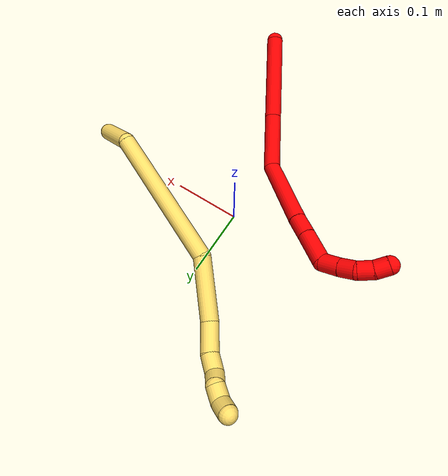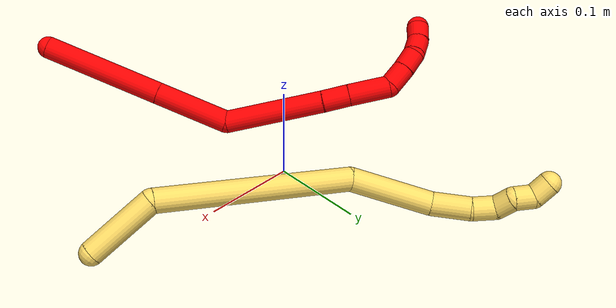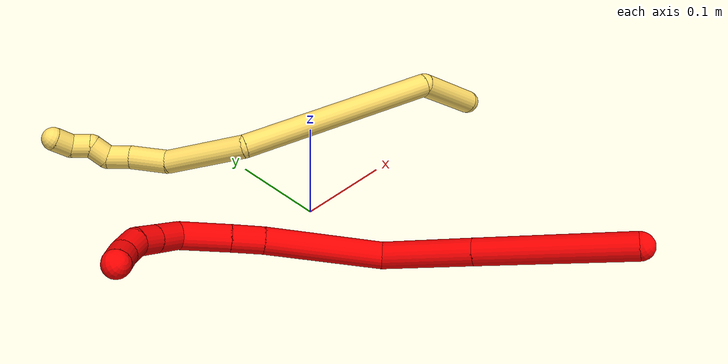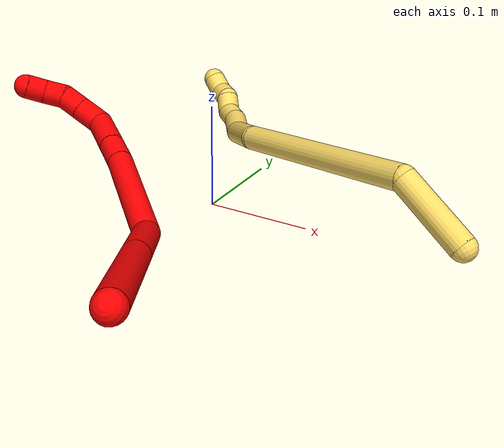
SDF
<sdf version="1.7">
 <world name="default">
  <model name="2">
   <static>0</static>
   <link name="2">
    <collision name="collision-cylinder-e_1_1_4">
     <pose>-0.029163 0.0073 0.061595 -0.117961 -0.439498 0.026376</pose>
     <geometry><cylinder><radius>0.0125</radius><length>0.137079</length></cylinder></geometry>
     <surface>
      <friction><ode><mu>1.16</mu><mu2>1.16</mu2><slip1>0</slip1><slip2>0</slip2></ode></friction>
      <contact><ode><kp>1e+06</kp><kd>1</kd><max_vel>0</max_vel><min_depth>0.001</min_depth></ode></contact>
     </surface>
    </collision>
    <visual name="visual-cylinder-e_1_1_4">
     <pose>-0.029163 0.0073 0.061595 -0.117961 -0.439498 0.026376</pose>
     <geometry><cylinder><radius>0.0125</radius><length>0.137079</length></cylinder></geometry>
     <material><ambient>1 0 0 1</ambient></material>
    </visual>
    <collision name="collision-cylinder-e_2_4_5">
     <pose>-0.076225 0.019237 0.161136 -0.121609 -0.43791 0.027092</pose>
     <geometry><cylinder><radius>0.0125</radius><length>0.084423</length></cylinder></geometry>
     <surface>
      <friction><ode><mu>1.16</mu><mu2>1.16</mu2><slip1>0</slip1><slip2>0</slip2></ode></friction>
      <contact><ode><kp>1e+06</kp><kd>1</kd><max_vel>0</max_vel><min_depth>0.001</min_depth></ode></contact>
     </surface>
    </collision>
    <visual name="visual-cylinder-e_2_4_5">
     <pose>-0.076225 0.019237 0.161136 -0.121609 -0.43791 0.027092</pose>
     <geometry><cylinder><radius>0.0125</radius><length>0.084423</length></cylinder></geometry>
     <material><ambient>1 0 0 1</ambient></material>
    </visual>
    <collision name="collision-cylinder-e_3_5_6">
     <pose>-0.139104 0.041457 0.226725 -0.566515 -0.941298 0.29406</pose>
     <geometry><cylinder><radius>0.0125</radius><length>0.11129</length></cylinder></geometry>
     <surface>
      <friction><ode><mu>1.16</mu><mu2>1.16</mu2><slip1>0</slip1><slip2>0</slip2></ode></friction>
      <contact><ode><kp>1e+06</kp><kd>1</kd><max_vel>0</max_vel><min_depth>0.001</min_depth></ode></contact>
     </surface>
    </collision>
    <visual name="visual-cylinder-e_3_5_6">
     <pose>-0.139104 0.041457 0.226725 -0.566515 -0.941298 0.29406</pose>
     <geometry><cylinder><radius>0.0125</radius><length>0.11129</length></cylinder></geometry>
     <material><ambient>1 0 0 1</ambient></material>
    </visual>
    <collision name="collision-cylinder-e_4_6_7">
     <pose>-0.195933 0.064789 0.261537 -0.675912 -0.911144 0.341028</pose>
     <geometry><cylinder><radius>0.0125</radius><length>0.029993</length></cylinder></geometry>
     <surface>
      <friction><ode><mu>1.16</mu><mu2>1.16</mu2><slip1>0</slip1><slip2>0</slip2></ode></friction>
      <contact><ode><kp>1e+06</kp><kd>1</kd><max_vel>0</max_vel><min_depth>0.001</min_depth></ode></contact>
     </surface>
    </collision>
    <visual name="visual-cylinder-e_4_6_7">
     <pose>-0.195933 0.064789 0.261537 -0.675912 -0.911144 0.341028</pose>
     <geometry><cylinder><radius>0.0125</radius><length>0.029993</length></cylinder></geometry>
     <material><ambient>1 0 0 1</ambient></material>
    </visual>
    <collision name="collision-cylinder-e_5_7_8">
     <pose>-0.225816 0.079476 0.280267 -0.658108 -0.889774 0.322768</pose>
     <geometry><cylinder><radius>0.0125</radius><length>0.046419</length></cylinder></geometry>
     <surface>
      <friction><ode><mu>1.16</mu><mu2>1.16</mu2><slip1>0</slip1><slip2>0</slip2></ode></friction>
      <contact><ode><kp>1e+06</kp><kd>1</kd><max_vel>0</max_vel><min_depth>0.001</min_depth></ode></contact>
     </surface>
    </collision>
    <visual name="visual-cylinder-e_5_7_8">
     <pose>-0.225816 0.079476 0.280267 -0.658108 -0.889774 0.322768</pose>
     <geometry><cylinder><radius>0.0125</radius><length>0.046419</length></cylinder></geometry>
     <material><ambient>1 0 0 1</ambient></material>
    </visual>
    <collision name="collision-cylinder-e_6_8_9">
     <pose>-0.253087 0.098148 0.290453 -1.71112 -0.754363 0.855726</pose>
     <geometry><cylinder><radius>0.0125</radius><length>0.026983</length></cylinder></geometry>
     <surface>
      <friction><ode><mu>1.16</mu><mu2>1.16</mu2><slip1>0</slip1><slip2>0</slip2></ode></friction>
      <contact><ode><kp>1e+06</kp><kd>1</kd><max_vel>0</max_vel><min_depth>0.001</min_depth></ode></contact>
     </surface>
    </collision>
    <visual name="visual-cylinder-e_6_8_9">
     <pose>-0.253087 0.098148 0.290453 -1.71112 -0.754363 0.855726</pose>
     <geometry><cylinder><radius>0.0125</radius><length>0.026983</length></cylinder></geometry>
     <material><ambient>1 0 0 1</ambient></material>
    </visual>
    <collision name="collision-cylinder-e_7_9_10">
     <pose>-0.269804 0.115929 0.286969 -1.82714 -0.732184 0.922188</pose>
     <geometry><cylinder><radius>0.0125</radius><length>0.022369</length></cylinder></geometry>
     <surface>
      <friction><ode><mu>1.16</mu><mu2>1.16</mu2><slip1>0</slip1><slip2>0</slip2></ode></friction>
      <contact><ode><kp>1e+06</kp><kd>1</kd><max_vel>0</max_vel><min_depth>0.001</min_depth></ode></contact>
     </surface>
    </collision>
    <visual name="visual-cylinder-e_7_9_10">
     <pose>-0.269804 0.115929 0.286969 -1.82714 -0.732184 0.922188</pose>
     <geometry><cylinder><radius>0.0125</radius><length>0.022369</length></cylinder></geometry>
     <material><ambient>1 0 0 1</ambient></material>
    </visual>
    <collision name="collision-cylinder-e_8_10_11">
     <pose>-0.280464 0.133639 0.281588 -1.89725 -0.302471 0.41876</pose>
     <geometry><cylinder><radius>0.0125</radius><length>0.021374</length></cylinder></geometry>
     <surface>
      <friction><ode><mu>1.16</mu><mu2>1.16</mu2><slip1>0</slip1><slip2>0</slip2></ode></friction>
      <contact><ode><kp>1e+06</kp><kd>1</kd><max_vel>0</max_vel><min_depth>0.001</min_depth></ode></contact>
     </surface>
    </collision>
    <visual name="visual-cylinder-e_8_10_11">
     <pose>-0.280464 0.133639 0.281588 -1.89725 -0.302471 0.41876</pose>
     <geometry><cylinder><radius>0.0125</radius><length>0.021374</length></cylinder></geometry>
     <material><ambient>1 0 0 1</ambient></material>
    </visual>
    <collision name="collision-cylinder-e_9_11_2">
     <pose>-0.285817 0.151467 0.272903 -2.15626 -0.21791 0.40204</pose>
     <geometry><cylinder><radius>0.0125</radius><length>0.020069</length></cylinder></geometry>
     <surface>
      <friction><ode><mu>1.16</mu><mu2>1.16</mu2><slip1>0</slip1><slip2>0</slip2></ode></friction>
      <contact><ode><kp>1e+06</kp><kd>1</kd><max_vel>0</max_vel><min_depth>0.001</min_depth></ode></contact>
     </surface>
    </collision>
    <visual name="visual-cylinder-e_9_11_2">
     <pose>-0.285817 0.151467 0.272903 -2.15626 -0.21791 0.40204</pose>
     <geometry><cylinder><radius>0.0125</radius><length>0.020069</length></cylinder></geometry>
     <material><ambient>1 0 0 1</ambient></material>
    </visual>
    <collision name="collision-sphere-2">
     <pose>-0.287986 0.159633 0.267489 0 -0 0</pose>
     <geometry><sphere><radius>0.0125</radius></sphere></geometry>
     <surface>
      <friction><ode><mu>1.16</mu><mu2>1.16</mu2><slip1>0</slip1><slip2>0</slip2></ode></friction>
      <contact><ode><kp>1e+06</kp><kd>1</kd><max_vel>0</max_vel><min_depth>0.001</min_depth></ode></contact>
     </surface>
    </collision>
    <visual name="visual-sphere-2">
     <pose>-0.287986 0.159633 0.267489 0 -0 0</pose>
     <geometry><sphere><radius>0.0125</radius></sphere></geometry>
     <material><ambient>1 0 0 1</ambient></material>
    </visual>
    <collision name="collision-sphere-11">
     <pose>-0.283647 0.143302 0.278317 0 -0 0</pose>
     <geometry><sphere><radius>0.0125</radius></sphere></geometry>
     <surface>
      <friction><ode><mu>1.16</mu><mu2>1.16</mu2><slip1>0</slip1><slip2>0</slip2></ode></friction>
      <contact><ode><kp>1e+06</kp><kd>1</kd><max_vel>0</max_vel><min_depth>0.001</min_depth></ode></contact>
     </surface>
    </collision>
    <visual name="visual-sphere-11">
     <pose>-0.283647 0.143302 0.278317 0 -0 0</pose>
     <geometry><sphere><radius>0.0125</radius></sphere></geometry>
     <material><ambient>1 0 0 1</ambient></material>
    </visual>
    <collision name="collision-sphere-10">
     <pose>-0.277281 0.123975 0.28486 0 -0 0</pose>
     <geometry><sphere><radius>0.0125</radius></sphere></geometry>
     <surface>
      <friction><ode><mu>1.16</mu><mu2>1.16</mu2><slip1>0</slip1><slip2>0</slip2></ode></friction>
      <contact><ode><kp>1e+06</kp><kd>1</kd><max_vel>0</max_vel><min_depth>0.001</min_depth></ode></contact>
     </surface>
    </collision>
    <visual name="visual-sphere-10">
     <pose>-0.277281 0.123975 0.28486 0 -0 0</pose>
     <geometry><sphere><radius>0.0125</radius></sphere></geometry>
     <material><ambient>1 0 0 1</ambient></material>
    </visual>
    <collision name="collision-sphere-9">
     <pose>-0.262327 0.107883 0.289078 0 -0 0</pose>
     <geometry><sphere><radius>0.0125</radius></sphere></geometry>
     <surface>
      <friction><ode><mu>1.16</mu><mu2>1.16</mu2><slip1>0</slip1><slip2>0</slip2></ode></friction>
      <contact><ode><kp>1e+06</kp><kd>1</kd><max_vel>0</max_vel><min_depth>0.001</min_depth></ode></contact>
     </surface>
    </collision>
    <visual name="visual-sphere-9">
     <pose>-0.262327 0.107883 0.289078 0 -0 0</pose>
     <geometry><sphere><radius>0.0125</radius></sphere></geometry>
     <material><ambient>1 0 0 1</ambient></material>
    </visual>
    <collision name="collision-sphere-4">
     <pose>-0.058325 0.014599 0.12319 0 -0 0</pose>
     <geometry><sphere><radius>0.0125</radius></sphere></geometry>
     <surface>
      <friction><ode><mu>1.16</mu><mu2>1.16</mu2><slip1>0</slip1><slip2>0</slip2></ode></friction>
      <contact><ode><kp>1e+06</kp><kd>1</kd><max_vel>0</max_vel><min_depth>0.001</min_depth></ode></contact>
     </surface>
    </collision>
    <visual name="visual-sphere-4">
     <pose>-0.058325 0.014599 0.12319 0 -0 0</pose>
     <geometry><sphere><radius>0.0125</radius></sphere></geometry>
     <material><ambient>1 0 0 1</ambient></material>
    </visual>
    <collision name="collision-sphere-1">
     <geometry><sphere><radius>0.0125</radius></sphere></geometry>
     <surface>
      <friction><ode><mu>1.16</mu><mu2>1.16</mu2><slip1>0</slip1><slip2>0</slip2></ode></friction>
      <contact><ode><kp>1e+06</kp><kd>1</kd><max_vel>0</max_vel><min_depth>0.001</min_depth></ode></contact>
     </surface>
    </collision>
    <visual name="visual-sphere-1">
     <geometry><sphere><radius>0.0125</radius></sphere></geometry>
     <material><ambient>1 0 0 1</ambient></material>
    </visual>
    <collision name="collision-sphere-8">
     <pose>-0.243848 0.088413 0.291828 0 -0 0</pose>
     <geometry><sphere><radius>0.0125</radius></sphere></geometry>
     <surface>
      <friction><ode><mu>1.16</mu><mu2>1.16</mu2><slip1>0</slip1><slip2>0</slip2></ode></friction>
      <contact><ode><kp>1e+06</kp><kd>1</kd><max_vel>0</max_vel><min_depth>0.001</min_depth></ode></contact>
     </surface>
    </collision>
    <visual name="visual-sphere-8">
     <pose>-0.243848 0.088413 0.291828 0 -0 0</pose>
     <geometry><sphere><radius>0.0125</radius></sphere></geometry>
     <material><ambient>1 0 0 1</ambient></material>
    </visual>
    <collision name="collision-sphere-5">
     <pose>-0.094125 0.023874 0.199082 0 -0 0</pose>
     <geometry><sphere><radius>0.0125</radius></sphere></geometry>
     <surface>
      <friction><ode><mu>1.16</mu><mu2>1.16</mu2><slip1>0</slip1><slip2>0</slip2></ode></friction>
      <contact><ode><kp>1e+06</kp><kd>1</kd><max_vel>0</max_vel><min_depth>0.001</min_depth></ode></contact>
     </surface>
    </collision>
    <visual name="visual-sphere-5">
     <pose>-0.094125 0.023874 0.199082 0 -0 0</pose>
     <geometry><sphere><radius>0.0125</radius></sphere></geometry>
     <material><ambient>1 0 0 1</ambient></material>
    </visual>
    <collision name="collision-sphere-6">
     <pose>-0.184083 0.059039 0.254367 0 -0 0</pose>
     <geometry><sphere><radius>0.0125</radius></sphere></geometry>
     <surface>
      <friction><ode><mu>1.16</mu><mu2>1.16</mu2><slip1>0</slip1><slip2>0</slip2></ode></friction>
      <contact><ode><kp>1e+06</kp><kd>1</kd><max_vel>0</max_vel><min_depth>0.001</min_depth></ode></contact>
     </surface>
    </collision>
    <visual name="visual-sphere-6">
     <pose>-0.184083 0.059039 0.254367 0 -0 0</pose>
     <geometry><sphere><radius>0.0125</radius></sphere></geometry>
     <material><ambient>1 0 0 1</ambient></material>
    </visual>
    <collision name="collision-sphere-7">
     <pose>-0.207784 0.070538 0.268707 0 -0 0</pose>
     <geometry><sphere><radius>0.0125</radius></sphere></geometry>
     <surface>
      <friction><ode><mu>1.16</mu><mu2>1.16</mu2><slip1>0</slip1><slip2>0</slip2></ode></friction>
      <contact><ode><kp>1e+06</kp><kd>1</kd><max_vel>0</max_vel><min_depth>0.001</min_depth></ode></contact>
     </surface>
    </collision>
    <visual name="visual-sphere-7">
     <pose>-0.207784 0.070538 0.268707 0 -0 0</pose>
     <geometry><sphere><radius>0.0125</radius></sphere></geometry>
     <material><ambient>1 0 0 1</ambient></material>
    </visual>
    <inertial>
     <pose>-0.133735 0.048017 0.187771 0 -0 0</pose>
     <mass>0.5</mass>
     <inertia>
      <ixx>0.000338</ixx>
      <ixy>0</ixy>
      <ixz>0</ixz>
      <iyy>0.000442</iyy>
      <iyz>0</iyz>
      <izz>0.00017</izz>
     </inertia>
    </inertial>
   </link>
   <pose>0.101048 -0.284206 0.074196 -2.85727 0.836942 -0.886539</pose>
  </model>
  <model name="5">
   <static>0</static>
   <link name="5">
    <collision name="collision-cylinder-e_1_1_4">
     <pose>-0.008086 0.003989 0.03667 -0.108354 -0.215801 0.011748</pose>
     <geometry><cylinder><radius>0.0125</radius><length>0.075524</length></cylinder></geometry>
     <surface>
      <friction><ode><mu>1.16</mu><mu2>1.16</mu2><slip1>0</slip1><slip2>0</slip2></ode></friction>
      <contact><ode><kp>1e+06</kp><kd>1</kd><max_vel>0</max_vel><min_depth>0.001</min_depth></ode></contact>
     </surface>
    </collision>
    <visual name="visual-cylinder-e_1_1_4">
     <pose>-0.008086 0.003989 0.03667 -0.108354 -0.215801 0.011748</pose>
     <geometry><cylinder><radius>0.0125</radius><length>0.075524</length></cylinder></geometry>
     <material><ambient>1 0.858824 0.4 1</ambient></material>
    </visual>
    <collision name="collision-cylinder-e_2_4_5">
     <pose>-0.082306 0.061045 0.134144 -0.717544 -0.68649 0.266457</pose>
     <geometry><cylinder><radius>0.0125</radius><length>0.208682</length></cylinder></geometry>
     <surface>
      <friction><ode><mu>1.16</mu><mu2>1.16</mu2><slip1>0</slip1><slip2>0</slip2></ode></friction>
      <contact><ode><kp>1e+06</kp><kd>1</kd><max_vel>0</max_vel><min_depth>0.001</min_depth></ode></contact>
     </surface>
    </collision>
    <visual name="visual-cylinder-e_2_4_5">
     <pose>-0.082306 0.061045 0.134144 -0.717544 -0.68649 0.266457</pose>
     <geometry><cylinder><radius>0.0125</radius><length>0.208682</length></cylinder></geometry>
     <material><ambient>1 0.858824 0.4 1</ambient></material>
    </visual>
    <collision name="collision-cylinder-e_3_5_6">
     <pose>-0.165831 0.151021 0.21073 -1.16677 -0.408823 0.271962</pose>
     <geometry><cylinder><radius>0.0125</radius><length>0.087493</length></cylinder></geometry>
     <surface>
      <friction><ode><mu>1.16</mu><mu2>1.16</mu2><slip1>0</slip1><slip2>0</slip2></ode></friction>
      <contact><ode><kp>1e+06</kp><kd>1</kd><max_vel>0</max_vel><min_depth>0.001</min_depth></ode></contact>
     </surface>
    </collision>
    <visual name="visual-cylinder-e_3_5_6">
     <pose>-0.165831 0.151021 0.21073 -1.16677 -0.408823 0.271962</pose>
     <geometry><cylinder><radius>0.0125</radius><length>0.087493</length></cylinder></geometry>
     <material><ambient>1 0.858824 0.4 1</ambient></material>
    </visual>
    <collision name="collision-cylinder-e_4_6_7">
     <pose>-0.186328 0.204917 0.237979 -0.976982 -0.150418 0.080048</pose>
     <geometry><cylinder><radius>0.0125</radius><length>0.041458</length></cylinder></geometry>
     <surface>
      <friction><ode><mu>1.16</mu><mu2>1.16</mu2><slip1>0</slip1><slip2>0</slip2></ode></friction>
      <contact><ode><kp>1e+06</kp><kd>1</kd><max_vel>0</max_vel><min_depth>0.001</min_depth></ode></contact>
     </surface>
    </collision>
    <visual name="visual-cylinder-e_4_6_7">
     <pose>-0.186328 0.204917 0.237979 -0.976982 -0.150418 0.080048</pose>
     <geometry><cylinder><radius>0.0125</radius><length>0.041458</length></cylinder></geometry>
     <material><ambient>1 0.858824 0.4 1</ambient></material>
    </visual>
    <collision name="collision-cylinder-e_5_7_8">
     <pose>-0.193398 0.230319 0.257874 -0.784668 -0.321296 0.133903</pose>
     <geometry><cylinder><radius>0.0125</radius><length>0.025107</length></cylinder></geometry>
     <surface>
      <friction><ode><mu>1.16</mu><mu2>1.16</mu2><slip1>0</slip1><slip2>0</slip2></ode></friction>
      <contact><ode><kp>1e+06</kp><kd>1</kd><max_vel>0</max_vel><min_depth>0.001</min_depth></ode></contact>
     </surface>
    </collision>
    <visual name="visual-cylinder-e_5_7_8">
     <pose>-0.193398 0.230319 0.257874 -0.784668 -0.321296 0.133903</pose>
     <geometry><cylinder><radius>0.0125</radius><length>0.025107</length></cylinder></geometry>
     <material><ambient>1 0.858824 0.4 1</ambient></material>
    </visual>
    <collision name="collision-cylinder-e_6_8_9">
     <pose>-0.195038 0.242409 0.275642 -0.374764 0.227646 -0.043344</pose>
     <geometry><cylinder><radius>0.0125</radius><length>0.020602</length></cylinder></geometry>
     <surface>
      <friction><ode><mu>1.16</mu><mu2>1.16</mu2><slip1>0</slip1><slip2>0</slip2></ode></friction>
      <contact><ode><kp>1e+06</kp><kd>1</kd><max_vel>0</max_vel><min_depth>0.001</min_depth></ode></contact>
     </surface>
    </collision>
    <visual name="visual-cylinder-e_6_8_9">
     <pose>-0.195038 0.242409 0.275642 -0.374764 0.227646 -0.043344</pose>
     <geometry><cylinder><radius>0.0125</radius><length>0.020602</length></cylinder></geometry>
     <material><ambient>1 0.858824 0.4 1</ambient></material>
    </visual>
    <collision name="collision-cylinder-e_7_9_10">
     <pose>-0.196388 0.252584 0.292249 -0.729827 -0.360336 0.138941</pose>
     <geometry><cylinder><radius>0.0125</radius><length>0.020844</length></cylinder></geometry>
     <surface>
      <friction><ode><mu>1.16</mu><mu2>1.16</mu2><slip1>0</slip1><slip2>0</slip2></ode></friction>
      <contact><ode><kp>1e+06</kp><kd>1</kd><max_vel>0</max_vel><min_depth>0.001</min_depth></ode></contact>
     </surface>
    </collision>
    <visual name="visual-cylinder-e_7_9_10">
     <pose>-0.196388 0.252584 0.292249 -0.729827 -0.360336 0.138941</pose>
     <geometry><cylinder><radius>0.0125</radius><length>0.020844</length></cylinder></geometry>
     <material><ambient>1 0.858824 0.4 1</ambient></material>
    </visual>
    <collision name="collision-cylinder-e_8_10_2">
     <pose>-0.20063 0.260459 0.309553 -0.13584 -0.056009 0.003811</pose>
     <geometry><cylinder><radius>0.0125</radius><length>0.020291</length></cylinder></geometry>
     <surface>
      <friction><ode><mu>1.16</mu><mu2>1.16</mu2><slip1>0</slip1><slip2>0</slip2></ode></friction>
      <contact><ode><kp>1e+06</kp><kd>1</kd><max_vel>0</max_vel><min_depth>0.001</min_depth></ode></contact>
     </surface>
    </collision>
    <visual name="visual-cylinder-e_8_10_2">
     <pose>-0.20063 0.260459 0.309553 -0.13584 -0.056009 0.003811</pose>
     <geometry><cylinder><radius>0.0125</radius><length>0.020291</length></cylinder></geometry>
     <material><ambient>1 0.858824 0.4 1</ambient></material>
    </visual>
    <collision name="collision-sphere-2">
     <pose>-0.201198 0.26183 0.319589 0 -0 0</pose>
     <geometry><sphere><radius>0.0125</radius></sphere></geometry>
     <surface>
      <friction><ode><mu>1.16</mu><mu2>1.16</mu2><slip1>0</slip1><slip2>0</slip2></ode></friction>
      <contact><ode><kp>1e+06</kp><kd>1</kd><max_vel>0</max_vel><min_depth>0.001</min_depth></ode></contact>
     </surface>
    </collision>
    <visual name="visual-sphere-2">
     <pose>-0.201198 0.26183 0.319589 0 -0 0</pose>
     <geometry><sphere><radius>0.0125</radius></sphere></geometry>
     <material><ambient>1 0.858824 0.4 1</ambient></material>
    </visual>
    <collision name="collision-sphere-10">
     <pose>-0.200062 0.259087 0.299517 0 -0 0</pose>
     <geometry><sphere><radius>0.0125</radius></sphere></geometry>
     <surface>
      <friction><ode><mu>1.16</mu><mu2>1.16</mu2><slip1>0</slip1><slip2>0</slip2></ode></friction>
      <contact><ode><kp>1e+06</kp><kd>1</kd><max_vel>0</max_vel><min_depth>0.001</min_depth></ode></contact>
     </surface>
    </collision>
    <visual name="visual-sphere-10">
     <pose>-0.200062 0.259087 0.299517 0 -0 0</pose>
     <geometry><sphere><radius>0.0125</radius></sphere></geometry>
     <material><ambient>1 0.858824 0.4 1</ambient></material>
    </visual>
    <collision name="collision-sphere-9">
     <pose>-0.192713 0.246082 0.28498 0 -0 0</pose>
     <geometry><sphere><radius>0.0125</radius></sphere></geometry>
     <surface>
      <friction><ode><mu>1.16</mu><mu2>1.16</mu2><slip1>0</slip1><slip2>0</slip2></ode></friction>
      <contact><ode><kp>1e+06</kp><kd>1</kd><max_vel>0</max_vel><min_depth>0.001</min_depth></ode></contact>
     </surface>
    </collision>
    <visual name="visual-sphere-9">
     <pose>-0.192713 0.246082 0.28498 0 -0 0</pose>
     <geometry><sphere><radius>0.0125</radius></sphere></geometry>
     <material><ambient>1 0.858824 0.4 1</ambient></material>
    </visual>
    <collision name="collision-sphere-4">
     <pose>-0.016172 0.007978 0.073339 0 -0 0</pose>
     <geometry><sphere><radius>0.0125</radius></sphere></geometry>
     <surface>
      <friction><ode><mu>1.16</mu><mu2>1.16</mu2><slip1>0</slip1><slip2>0</slip2></ode></friction>
      <contact><ode><kp>1e+06</kp><kd>1</kd><max_vel>0</max_vel><min_depth>0.001</min_depth></ode></contact>
     </surface>
    </collision>
    <visual name="visual-sphere-4">
     <pose>-0.016172 0.007978 0.073339 0 -0 0</pose>
     <geometry><sphere><radius>0.0125</radius></sphere></geometry>
     <material><ambient>1 0.858824 0.4 1</ambient></material>
    </visual>
    <collision name="collision-sphere-1">
     <geometry><sphere><radius>0.0125</radius></sphere></geometry>
     <surface>
      <friction><ode><mu>1.16</mu><mu2>1.16</mu2><slip1>0</slip1><slip2>0</slip2></ode></friction>
      <contact><ode><kp>1e+06</kp><kd>1</kd><max_vel>0</max_vel><min_depth>0.001</min_depth></ode></contact>
     </surface>
    </collision>
    <visual name="visual-sphere-1">
     <geometry><sphere><radius>0.0125</radius></sphere></geometry>
     <material><ambient>1 0.858824 0.4 1</ambient></material>
    </visual>
    <collision name="collision-sphere-8">
     <pose>-0.197362 0.238735 0.266303 0 -0 0</pose>
     <geometry><sphere><radius>0.0125</radius></sphere></geometry>
     <surface>
      <friction><ode><mu>1.16</mu><mu2>1.16</mu2><slip1>0</slip1><slip2>0</slip2></ode></friction>
      <contact><ode><kp>1e+06</kp><kd>1</kd><max_vel>0</max_vel><min_depth>0.001</min_depth></ode></contact>
     </surface>
    </collision>
    <visual name="visual-sphere-8">
     <pose>-0.197362 0.238735 0.266303 0 -0 0</pose>
     <geometry><sphere><radius>0.0125</radius></sphere></geometry>
     <material><ambient>1 0.858824 0.4 1</ambient></material>
    </visual>
    <collision name="collision-sphere-5">
     <pose>-0.14844 0.114111 0.19495 0 -0 0</pose>
     <geometry><sphere><radius>0.0125</radius></sphere></geometry>
     <surface>
      <friction><ode><mu>1.16</mu><mu2>1.16</mu2><slip1>0</slip1><slip2>0</slip2></ode></friction>
      <contact><ode><kp>1e+06</kp><kd>1</kd><max_vel>0</max_vel><min_depth>0.001</min_depth></ode></contact>
     </surface>
    </collision>
    <visual name="visual-sphere-5">
     <pose>-0.14844 0.114111 0.19495 0 -0 0</pose>
     <geometry><sphere><radius>0.0125</radius></sphere></geometry>
     <material><ambient>1 0.858824 0.4 1</ambient></material>
    </visual>
    <collision name="collision-sphere-6">
     <pose>-0.183221 0.18793 0.226511 0 -0 0</pose>
     <geometry><sphere><radius>0.0125</radius></sphere></geometry>
     <surface>
      <friction><ode><mu>1.16</mu><mu2>1.16</mu2><slip1>0</slip1><slip2>0</slip2></ode></friction>
      <contact><ode><kp>1e+06</kp><kd>1</kd><max_vel>0</max_vel><min_depth>0.001</min_depth></ode></contact>
     </surface>
    </collision>
    <visual name="visual-sphere-6">
     <pose>-0.183221 0.18793 0.226511 0 -0 0</pose>
     <geometry><sphere><radius>0.0125</radius></sphere></geometry>
     <material><ambient>1 0.858824 0.4 1</ambient></material>
    </visual>
    <collision name="collision-sphere-7">
     <pose>-0.189434 0.221903 0.249446 0 -0 0</pose>
     <geometry><sphere><radius>0.0125</radius></sphere></geometry>
     <surface>
      <friction><ode><mu>1.16</mu><mu2>1.16</mu2><slip1>0</slip1><slip2>0</slip2></ode></friction>
      <contact><ode><kp>1e+06</kp><kd>1</kd><max_vel>0</max_vel><min_depth>0.001</min_depth></ode></contact>
     </surface>
    </collision>
    <visual name="visual-sphere-7">
     <pose>-0.189434 0.221903 0.249446 0 -0 0</pose>
     <geometry><sphere><radius>0.0125</radius></sphere></geometry>
     <material><ambient>1 0.858824 0.4 1</ambient></material>
    </visual>
    <inertial>
     <pose>-0.114117 0.11215 0.167185 0 -0 0</pose>
     <mass>0.5</mass>
     <inertia><ixx>0.000832</ixx><ixy>0</ixy><ixz>0</ixz><iyy>0.00091</iyy><iyz>0</iyz><izz>9.1e-05</izz></inertia>
    </inertial>
   </link>
   <pose>0.244766 -0.008912 0.025848 -0.482366 -0.616753 0.40853</pose>
  </model>
 </world>
</sdf>
